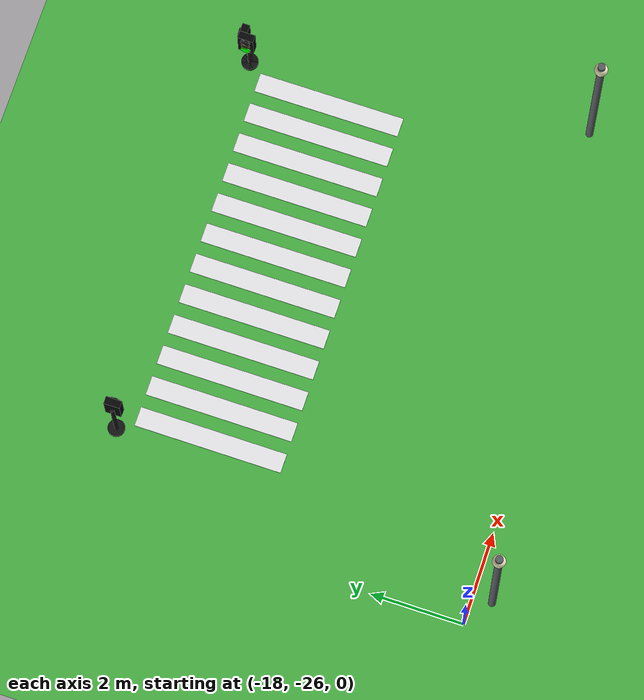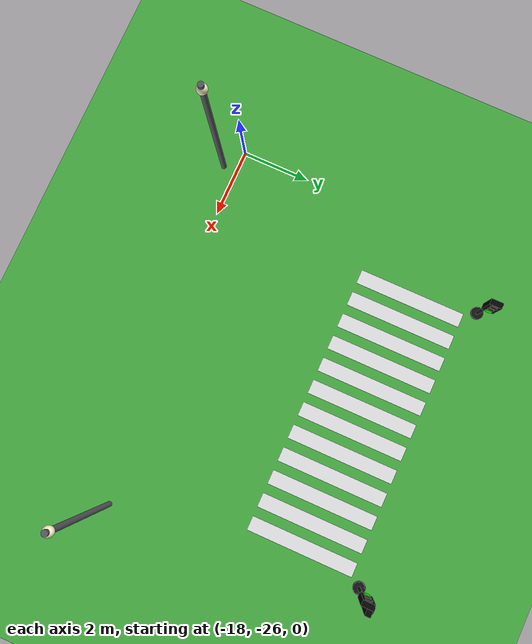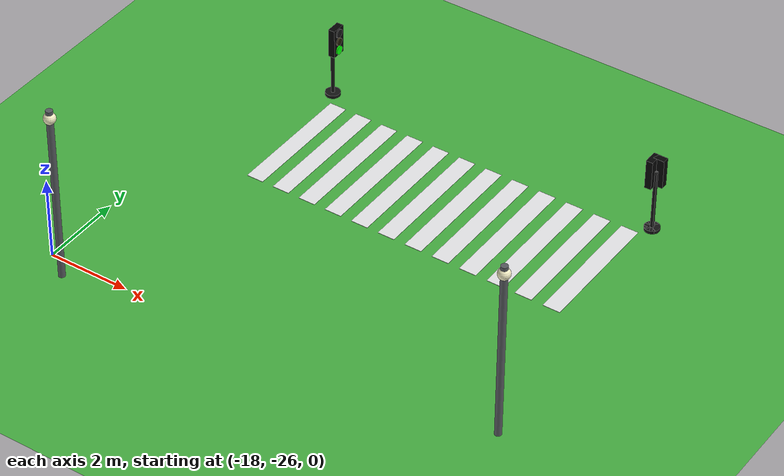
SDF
<sdf version="1.10">
 <world name="city_second">
  <model name="ground_plane">
   <static>true</static>
   <link name="link">
    <collision name="collision">
     <geometry><plane><normal>0 0 1</normal><size>300 300</size></plane></geometry>
    </collision>
    <visual name="visual">
     <geometry><plane><normal>0 0 1</normal><size>300 300</size></plane></geometry>
     <material>
      <ambient>0.280000001 0.689999998 0.25999999 1</ambient>
      <diffuse>0.280000001 0.689999998 0.25999999 1</diffuse>
      <specular>0.0299999993 0.0299999993 0.0299999993 1</specular>
     </material>
    </visual>
    <inertial>
     <mass>1</mass>
     <inertia><ixx>1</ixx><ixy>0</ixy><ixz>0</ixz><iyy>1</iyy><iyz>0</iyz><izz>1</izz></inertia>
    </inertial>
   </link>
  </model>
  <model name="crosswalk_h_1_1_south_7_3">
   <static>true</static>
   <pose>-12.1189 -19.828700000000001 0.017000000000000001 0 0 0</pose>
   <link name="stripe_1">
    <collision name="collision">
     <geometry><box><size>0.41999999999999998 3.2000000000000002 0.01</size></box></geometry>
    </collision>
    <visual name="visual">
     <geometry><box><size>0.41999999999999998 3.2000000000000002 0.01</size></box></geometry>
     <material>
      <ambient>0.920000017 0.920000017 0.930000007 1</ambient>
      <diffuse>0.920000017 0.920000017 0.930000007 1</diffuse>
      <specular>0.0299999993 0.0299999993 0.0299999993 1</specular>
     </material>
    </visual>
    <pose>-3.8500000000000001 0 0 0 0 0</pose>
    <inertial>
     <mass>1</mass>
     <inertia><ixx>1</ixx><ixy>0</ixy><ixz>0</ixz><iyy>1</iyy><iyz>0</iyz><izz>1</izz></inertia>
    </inertial>
   </link>
   <link name="stripe_2">
    <collision name="collision">
     <geometry><box><size>0.41999999999999998 3.2000000000000002 0.01</size></box></geometry>
    </collision>
    <visual name="visual">
     <geometry><box><size>0.41999999999999998 3.2000000000000002 0.01</size></box></geometry>
     <material>
      <ambient>0.920000017 0.920000017 0.930000007 1</ambient>
      <diffuse>0.920000017 0.920000017 0.930000007 1</diffuse>
      <specular>0.0299999993 0.0299999993 0.0299999993 1</specular>
     </material>
    </visual>
    <pose>-3.1499999999999999 0 0 0 0 0</pose>
    <inertial>
     <mass>1</mass>
     <inertia><ixx>1</ixx><ixy>0</ixy><ixz>0</ixz><iyy>1</iyy><iyz>0</iyz><izz>1</izz></inertia>
    </inertial>
   </link>
   <link name="stripe_3">
    <collision name="collision">
     <geometry><box><size>0.41999999999999998 3.2000000000000002 0.01</size></box></geometry>
    </collision>
    <visual name="visual">
     <geometry><box><size>0.41999999999999998 3.2000000000000002 0.01</size></box></geometry>
     <material>
      <ambient>0.920000017 0.920000017 0.930000007 1</ambient>
      <diffuse>0.920000017 0.920000017 0.930000007 1</diffuse>
      <specular>0.0299999993 0.0299999993 0.0299999993 1</specular>
     </material>
    </visual>
    <pose>-2.4500000000000002 0 0 0 0 0</pose>
    <inertial>
     <mass>1</mass>
     <inertia><ixx>1</ixx><ixy>0</ixy><ixz>0</ixz><iyy>1</iyy><iyz>0</iyz><izz>1</izz></inertia>
    </inertial>
   </link>
   <link name="stripe_4">
    <collision name="collision">
     <geometry><box><size>0.41999999999999998 3.2000000000000002 0.01</size></box></geometry>
    </collision>
    <visual name="visual">
     <geometry><box><size>0.41999999999999998 3.2000000000000002 0.01</size></box></geometry>
     <material>
      <ambient>0.920000017 0.920000017 0.930000007 1</ambient>
      <diffuse>0.920000017 0.920000017 0.930000007 1</diffuse>
      <specular>0.0299999993 0.0299999993 0.0299999993 1</specular>
     </material>
    </visual>
    <pose>-1.75 0 0 0 0 0</pose>
    <inertial>
     <mass>1</mass>
     <inertia><ixx>1</ixx><ixy>0</ixy><ixz>0</ixz><iyy>1</iyy><iyz>0</iyz><izz>1</izz></inertia>
    </inertial>
   </link>
   <link name="stripe_5">
    <collision name="collision">
     <geometry><box><size>0.41999999999999998 3.2000000000000002 0.01</size></box></geometry>
    </collision>
    <visual name="visual">
     <geometry><box><size>0.41999999999999998 3.2000000000000002 0.01</size></box></geometry>
     <material>
      <ambient>0.920000017 0.920000017 0.930000007 1</ambient>
      <diffuse>0.920000017 0.920000017 0.930000007 1</diffuse>
      <specular>0.0299999993 0.0299999993 0.0299999993 1</specular>
     </material>
    </visual>
    <pose>-1.05 0 0 0 0 0</pose>
    <inertial>
     <mass>1</mass>
     <inertia><ixx>1</ixx><ixy>0</ixy><ixz>0</ixz><iyy>1</iyy><iyz>0</iyz><izz>1</izz></inertia>
    </inertial>
   </link>
   <link name="stripe_6">
    <collision name="collision">
     <geometry><box><size>0.41999999999999998 3.2000000000000002 0.01</size></box></geometry>
    </collision>
    <visual name="visual">
     <geometry><box><size>0.41999999999999998 3.2000000000000002 0.01</size></box></geometry>
     <material>
      <ambient>0.920000017 0.920000017 0.930000007 1</ambient>
      <diffuse>0.920000017 0.920000017 0.930000007 1</diffuse>
      <specular>0.0299999993 0.0299999993 0.0299999993 1</specular>
     </material>
    </visual>
    <pose>-0.34999999999999998 0 0 0 0 0</pose>
    <inertial>
     <mass>1</mass>
     <inertia><ixx>1</ixx><ixy>0</ixy><ixz>0</ixz><iyy>1</iyy><iyz>0</iyz><izz>1</izz></inertia>
    </inertial>
   </link>
   <link name="stripe_7">
    <collision name="collision">
     <geometry><box><size>0.41999999999999998 3.2000000000000002 0.01</size></box></geometry>
    </collision>
    <visual name="visual">
     <geometry><box><size>0.41999999999999998 3.2000000000000002 0.01</size></box></geometry>
     <material>
      <ambient>0.920000017 0.920000017 0.930000007 1</ambient>
      <diffuse>0.920000017 0.920000017 0.930000007 1</diffuse>
      <specular>0.0299999993 0.0299999993 0.0299999993 1</specular>
     </material>
    </visual>
    <pose>0.34999999999999998 0 0 0 0 0</pose>
    <inertial>
     <mass>1</mass>
     <inertia><ixx>1</ixx><ixy>0</ixy><ixz>0</ixz><iyy>1</iyy><iyz>0</iyz><izz>1</izz></inertia>
    </inertial>
   </link>
   <link name="stripe_8">
    <collision name="collision">
     <geometry><box><size>0.41999999999999998 3.2000000000000002 0.01</size></box></geometry>
    </collision>
    <visual name="visual">
     <geometry><box><size>0.41999999999999998 3.2000000000000002 0.01</size></box></geometry>
     <material>
      <ambient>0.920000017 0.920000017 0.930000007 1</ambient>
      <diffuse>0.920000017 0.920000017 0.930000007 1</diffuse>
      <specular>0.0299999993 0.0299999993 0.0299999993 1</specular>
     </material>
    </visual>
    <pose>1.05 0 0 0 0 0</pose>
    <inertial>
     <mass>1</mass>
     <inertia><ixx>1</ixx><ixy>0</ixy><ixz>0</ixz><iyy>1</iyy><iyz>0</iyz><izz>1</izz></inertia>
    </inertial>
   </link>
   <link name="stripe_9">
    <collision name="collision">
     <geometry><box><size>0.41999999999999998 3.2000000000000002 0.01</size></box></geometry>
    </collision>
    <visual name="visual">
     <geometry><box><size>0.41999999999999998 3.2000000000000002 0.01</size></box></geometry>
     <material>
      <ambient>0.920000017 0.920000017 0.930000007 1</ambient>
      <diffuse>0.920000017 0.920000017 0.930000007 1</diffuse>
      <specular>0.0299999993 0.0299999993 0.0299999993 1</specular>
     </material>
    </visual>
    <pose>1.75 0 0 0 0 0</pose>
    <inertial>
     <mass>1</mass>
     <inertia><ixx>1</ixx><ixy>0</ixy><ixz>0</ixz><iyy>1</iyy><iyz>0</iyz><izz>1</izz></inertia>
    </inertial>
   </link>
   <link name="stripe_10">
    <collision name="collision">
     <geometry><box><size>0.41999999999999998 3.2000000000000002 0.01</size></box></geometry>
    </collision>
    <visual name="visual">
     <geometry><box><size>0.41999999999999998 3.2000000000000002 0.01</size></box></geometry>
     <material>
      <ambient>0.920000017 0.920000017 0.930000007 1</ambient>
      <diffuse>0.920000017 0.920000017 0.930000007 1</diffuse>
      <specular>0.0299999993 0.0299999993 0.0299999993 1</specular>
     </material>
    </visual>
    <pose>2.4500000000000002 0 0 0 0 0</pose>
    <inertial>
     <mass>1</mass>
     <inertia><ixx>1</ixx><ixy>0</ixy><ixz>0</ixz><iyy>1</iyy><iyz>0</iyz><izz>1</izz></inertia>
    </inertial>
   </link>
   <link name="stripe_11">
    <collision name="collision">
     <geometry><box><size>0.41999999999999998 3.2000000000000002 0.01</size></box></geometry>
    </collision>
    <visual name="visual">
     <geometry><box><size>0.41999999999999998 3.2000000000000002 0.01</size></box></geometry>
     <material>
      <ambient>0.920000017 0.920000017 0.930000007 1</ambient>
      <diffuse>0.920000017 0.920000017 0.930000007 1</diffuse>
      <specular>0.0299999993 0.0299999993 0.0299999993 1</specular>
     </material>
    </visual>
    <pose>3.1499999999999999 0 0 0 0 0</pose>
    <inertial>
     <mass>1</mass>
     <inertia><ixx>1</ixx><ixy>0</ixy><ixz>0</ixz><iyy>1</iyy><iyz>0</iyz><izz>1</izz></inertia>
    </inertial>
   </link>
   <link name="stripe_12">
    <collision name="collision">
     <geometry><box><size>0.41999999999999998 3.2000000000000002 0.01</size></box></geometry>
    </collision>
    <visual name="visual">
     <geometry><box><size>0.41999999999999998 3.2000000000000002 0.01</size></box></geometry>
     <material>
      <ambient>0.920000017 0.920000017 0.930000007 1</ambient>
      <diffuse>0.920000017 0.920000017 0.930000007 1</diffuse>
      <specular>0.0299999993 0.0299999993 0.0299999993 1</specular>
     </material>
    </visual>
    <pose>3.8500000000000001 0 0 0 0 0</pose>
    <inertial>
     <mass>1</mass>
     <inertia><ixx>1</ixx><ixy>0</ixy><ixz>0</ixz><iyy>1</iyy><iyz>0</iyz><izz>1</izz></inertia>
    </inertial>
   </link>
  </model>
  <model name="lamp_1_2_3">
   <static>true</static>
   <pose>-17.3917 -26.418299999999999 2.2000000000000002 0 0 0</pose>
   <link name="link">
    <collision name="collision">
     <geometry>
      <cylinder><radius>0.080000000000000002</radius><length>4.4000000000000004</length></cylinder>
     </geometry>
    </collision>
    <visual name="pole">
     <geometry>
      <cylinder><radius>0.080000000000000002</radius><length>4.4000000000000004</length></cylinder>
     </geometry>
     <material>
      <ambient>0.349999994 0.360000014 0.379999995 1</ambient>
      <diffuse>0.349999994 0.360000014 0.379999995 1</diffuse>
      <specular>0.0299999993 0.0299999993 0.0299999993 1</specular>
     </material>
    </visual>
    <visual name="lamp_head">
     <pose>0 0 2 0 0 0</pose>
     <geometry><sphere><radius>0.14000000000000001</radius></sphere></geometry>
     <material>
      <ambient>0.959999979 0.939999998 0.779999971 1</ambient>
      <diffuse>0.959999979 0.939999998 0.779999971 1</diffuse>
      <specular>0.0299999993 0.0299999993 0.0299999993 1</specular>
     </material>
    </visual>
    <inertial>
     <mass>1</mass>
     <inertia><ixx>1</ixx><ixy>0</ixy><ixz>0</ixz><iyy>1</iyy><iyz>0</iyz><izz>1</izz></inertia>
    </inertial>
   </link>
  </model>
  <model name="lamp_1_2_4">
   <static>true</static>
   <pose>-7.1247800000000003 -25.261600000000001 2.2000000000000002 0 0 0</pose>
   <link name="link">
    <collision name="collision">
     <geometry>
      <cylinder><radius>0.080000000000000002</radius><length>4.4000000000000004</length></cylinder>
     </geometry>
    </collision>
    <visual name="pole">
     <geometry>
      <cylinder><radius>0.080000000000000002</radius><length>4.4000000000000004</length></cylinder>
     </geometry>
     <material>
      <ambient>0.349999994 0.360000014 0.379999995 1</ambient>
      <diffuse>0.349999994 0.360000014 0.379999995 1</diffuse>
      <specular>0.0299999993 0.0299999993 0.0299999993 1</specular>
     </material>
    </visual>
    <visual name="lamp_head">
     <pose>0 0 2 0 0 0</pose>
     <geometry><sphere><radius>0.14000000000000001</radius></sphere></geometry>
     <material>
      <ambient>0.959999979 0.939999998 0.779999971 1</ambient>
      <diffuse>0.959999979 0.939999998 0.779999971 1</diffuse>
      <specular>0.0299999993 0.0299999993 0.0299999993 1</specular>
     </material>
    </visual>
    <inertial>
     <mass>1</mass>
     <inertia><ixx>1</ixx><ixy>0</ixy><ixz>0</ixz><iyy>1</iyy><iyz>0</iyz><izz>1</izz></inertia>
    </inertial>
   </link>
  </model>
  <model name="simple_traffic_light_green_north_1_1">
   <static>true</static>
   <pose>-7.892690759823056 -17.934411539396873 0 0 0 0</pose>
   <link name="base">
    <pose>0 0 0.040000000000000001 0 0 0</pose>
    <collision name="collision">
     <geometry>
      <cylinder><radius>0.17999999999999999</radius><length>0.080000000000000002</length></cylinder>
     </geometry>
    </collision>
    <visual name="visual">
     <geometry>
      <cylinder><radius>0.17999999999999999</radius><length>0.080000000000000002</length></cylinder>
     </geometry>
     <material>
      <ambient>0.0799999982 0.0799999982 0.0799999982 1</ambient>
      <diffuse>0.0799999982 0.0799999982 0.0799999982 1</diffuse>
      <specular>0.150000006 0.150000006 0.150000006 1</specular>
      <emissive>0 0 0 1</emissive>
     </material>
    </visual>
   </link>
   <link name="pole">
    <pose>0 0 0.80000000000000004 0 0 0</pose>
    <collision name="collision">
     <geometry>
      <cylinder><radius>0.044999999999999998</radius><length>1.6000000000000001</length></cylinder>
     </geometry>
    </collision>
    <visual name="visual">
     <geometry>
      <cylinder><radius>0.044999999999999998</radius><length>1.6000000000000001</length></cylinder>
     </geometry>
     <material>
      <ambient>0.0799999982 0.0799999982 0.0799999982 1</ambient>
      <diffuse>0.0799999982 0.0799999982 0.0799999982 1</diffuse>
      <specular>0.150000006 0.150000006 0.150000006 1</specular>
      <emissive>0 0 0 1</emissive>
     </material>
    </visual>
   </link>
   <link name="signal_box">
    <pose>0 0.089999999999999997 1.55 0 0 0</pose>
    <collision name="collision">
     <geometry><box><size>0.34000000000000002 0.16 0.71999999999999997</size></box></geometry>
    </collision>
    <visual name="visual">
     <geometry><box><size>0.34000000000000002 0.16 0.71999999999999997</size></box></geometry>
     <material>
      <ambient>0.0199999996 0.0199999996 0.0199999996 1</ambient>
      <diffuse>0.0199999996 0.0199999996 0.0199999996 1</diffuse>
      <specular>0.150000006 0.150000006 0.150000006 1</specular>
      <emissive>0 0 0 1</emissive>
     </material>
    </visual>
   </link>
   <link name="red_lens">
    <pose>0 0.18099999999999999 1.78 1.5707963268 0 0</pose>
    <collision name="collision">
     <geometry><cylinder><radius>0.105</radius><length>0.035000000000000003</length></cylinder></geometry>
    </collision>
    <visual name="visual">
     <geometry><cylinder><radius>0.105</radius><length>0.035000000000000003</length></cylinder></geometry>
     <material>
      <ambient>0.0799999982 0.0799999982 0.0799999982 1</ambient>
      <diffuse>0.0799999982 0.0799999982 0.0799999982 1</diffuse>
      <specular>0.150000006 0.150000006 0.150000006 1</specular>
      <emissive>0 0 0 1</emissive>
     </material>
    </visual>
   </link>
   <link name="yellow_lens">
    <pose>0 0.182 1.55 1.5707963268 0 0</pose>
    <collision name="collision">
     <geometry>
      <cylinder><radius>0.095000000000000001</radius><length>0.035000000000000003</length></cylinder>
     </geometry>
    </collision>
    <visual name="visual">
     <geometry>
      <cylinder><radius>0.095000000000000001</radius><length>0.035000000000000003</length></cylinder>
     </geometry>
     <material>
      <ambient>0.119999997 0.100000001 0.0199999996 1</ambient>
      <diffuse>0.119999997 0.100000001 0.0199999996 1</diffuse>
      <specular>0.150000006 0.150000006 0.150000006 1</specular>
      <emissive>0 0 0 1</emissive>
     </material>
    </visual>
   </link>
   <link name="green_lens">
    <pose>0 0.183 1.3200000000000001 1.5707963268 0 0</pose>
    <collision name="collision">
     <geometry><cylinder><radius>0.105</radius><length>0.035000000000000003</length></cylinder></geometry>
    </collision>
    <visual name="visual">
     <geometry><cylinder><radius>0.105</radius><length>0.035000000000000003</length></cylinder></geometry>
     <material>
      <ambient>0.0199999996 1 0.0199999996 1</ambient>
      <diffuse>0.0199999996 1 0.0199999996 1</diffuse>
      <specular>0.150000006 0.150000006 0.150000006 1</specular>
      <emissive>0.0199999996 1 0.0199999996 1</emissive>
     </material>
    </visual>
   </link>
   <light name="green_glow" type="point">
    <pose>0 0.28 1.32 0 0 0</pose>
    <diffuse>0.02 1 0.02 1</diffuse>
    <specular>0.02 1 0.02 1</specular>
    <attenuation>
     <range>3.0</range>
     <constant>0.8</constant>
     <linear>0.15</linear>
     <quadratic>0.02</quadratic>
    </attenuation>
    <cast_shadows>false</cast_shadows>
   </light>
  </model>
  <model name="simple_traffic_light_green_east_1_1">
   <static>true</static>
   <pose>-16.352831093892426 -17.895696302400466 -1.3877787807814457e-17 0 0 -1.5707999672671704</pose>
   <link name="base">
    <pose>0 0 0.040000000000000001 0 0 0</pose>
    <collision name="collision">
     <geometry>
      <cylinder><radius>0.17999999999999999</radius><length>0.080000000000000002</length></cylinder>
     </geometry>
    </collision>
    <visual name="visual">
     <geometry>
      <cylinder><radius>0.17999999999999999</radius><length>0.080000000000000002</length></cylinder>
     </geometry>
     <material>
      <ambient>0.0799999982 0.0799999982 0.0799999982 1</ambient>
      <diffuse>0.0799999982 0.0799999982 0.0799999982 1</diffuse>
      <specular>0.150000006 0.150000006 0.150000006 1</specular>
      <emissive>0 0 0 1</emissive>
     </material>
    </visual>
   </link>
   <link name="pole">
    <pose>0 0 0.80000000000000004 0 0 0</pose>
    <collision name="collision">
     <geometry>
      <cylinder><radius>0.044999999999999998</radius><length>1.6000000000000001</length></cylinder>
     </geometry>
    </collision>
    <visual name="visual">
     <geometry>
      <cylinder><radius>0.044999999999999998</radius><length>1.6000000000000001</length></cylinder>
     </geometry>
     <material>
      <ambient>0.0799999982 0.0799999982 0.0799999982 1</ambient>
      <diffuse>0.0799999982 0.0799999982 0.0799999982 1</diffuse>
      <specular>0.150000006 0.150000006 0.150000006 1</specular>
      <emissive>0 0 0 1</emissive>
     </material>
    </visual>
   </link>
   <link name="signal_box">
    <pose>0 0.089999999999999997 1.55 0 0 0</pose>
    <collision name="collision">
     <geometry><box><size>0.34000000000000002 0.16 0.71999999999999997</size></box></geometry>
    </collision>
    <visual name="visual">
     <geometry><box><size>0.34000000000000002 0.16 0.71999999999999997</size></box></geometry>
     <material>
      <ambient>0.0199999996 0.0199999996 0.0199999996 1</ambient>
      <diffuse>0.0199999996 0.0199999996 0.0199999996 1</diffuse>
      <specular>0.150000006 0.150000006 0.150000006 1</specular>
      <emissive>0 0 0 1</emissive>
     </material>
    </visual>
   </link>
   <link name="red_lens">
    <pose>0 0.18099999999999999 1.78 1.5707963268 0 0</pose>
    <collision name="collision">
     <geometry><cylinder><radius>0.105</radius><length>0.035000000000000003</length></cylinder></geometry>
    </collision>
    <visual name="visual">
     <geometry><cylinder><radius>0.105</radius><length>0.035000000000000003</length></cylinder></geometry>
     <material>
      <ambient>0.0799999982 0.0799999982 0.0799999982 1</ambient>
      <diffuse>0.0799999982 0.0799999982 0.0799999982 1</diffuse>
      <specular>0.150000006 0.150000006 0.150000006 1</specular>
      <emissive>0 0 0 1</emissive>
     </material>
    </visual>
   </link>
   <link name="yellow_lens">
    <pose>0 0.182 1.55 1.5707963268 0 0</pose>
    <collision name="collision">
     <geometry>
      <cylinder><radius>0.095000000000000001</radius><length>0.035000000000000003</length></cylinder>
     </geometry>
    </collision>
    <visual name="visual">
     <geometry>
      <cylinder><radius>0.095000000000000001</radius><length>0.035000000000000003</length></cylinder>
     </geometry>
     <material>
      <ambient>0.119999997 0.100000001 0.0199999996 1</ambient>
      <diffuse>0.119999997 0.100000001 0.0199999996 1</diffuse>
      <specular>0.150000006 0.150000006 0.150000006 1</specular>
      <emissive>0 0 0 1</emissive>
     </material>
    </visual>
   </link>
   <link name="green_lens">
    <pose>0 0.183 1.3200000000000001 1.5707963268 0 0</pose>
    <collision name="collision">
     <geometry><cylinder><radius>0.105</radius><length>0.035000000000000003</length></cylinder></geometry>
    </collision>
    <visual name="visual">
     <geometry><cylinder><radius>0.105</radius><length>0.035000000000000003</length></cylinder></geometry>
     <material>
      <ambient>0.0199999996 1 0.0199999996 1</ambient>
      <diffuse>0.0199999996 1 0.0199999996 1</diffuse>
      <specular>0.150000006 0.150000006 0.150000006 1</specular>
      <emissive>0.0199999996 1 0.0199999996 1</emissive>
     </material>
    </visual>
   </link>
   <light name="green_glow" type="point">
    <pose>0 0.28 1.32 0 0 0</pose>
    <diffuse>0.02 1 0.02 1</diffuse>
    <specular>0.02 1 0.02 1</specular>
    <attenuation>
     <range>3.0</range>
     <constant>0.8</constant>
     <linear>0.15</linear>
     <quadratic>0.02</quadratic>
    </attenuation>
    <cast_shadows>false</cast_shadows>
   </light>
  </model>
  <model name="simple_traffic_light_green_west_1_1">
   <static>true</static>
   <pose>-7.8903706909818361 -17.93204356425986 -1.3877787807814457e-17 0 0 1.5707999672671704</pose>
   <link name="base">
    <pose>0 0 0.040000000000000001 0 0 0</pose>
    <collision name="collision">
     <geometry>
      <cylinder><radius>0.17999999999999999</radius><length>0.080000000000000002</length></cylinder>
     </geometry>
    </collision>
    <visual name="visual">
     <geometry>
      <cylinder><radius>0.17999999999999999</radius><length>0.080000000000000002</length></cylinder>
     </geometry>
     <material>
      <ambient>0.0799999982 0.0799999982 0.0799999982 1</ambient>
      <diffuse>0.0799999982 0.0799999982 0.0799999982 1</diffuse>
      <specular>0.150000006 0.150000006 0.150000006 1</specular>
      <emissive>0 0 0 1</emissive>
     </material>
    </visual>
   </link>
   <link name="pole">
    <pose>0 0 0.80000000000000004 0 0 0</pose>
    <collision name="collision">
     <geometry>
      <cylinder><radius>0.044999999999999998</radius><length>1.6000000000000001</length></cylinder>
     </geometry>
    </collision>
    <visual name="visual">
     <geometry>
      <cylinder><radius>0.044999999999999998</radius><length>1.6000000000000001</length></cylinder>
     </geometry>
     <material>
      <ambient>0.0799999982 0.0799999982 0.0799999982 1</ambient>
      <diffuse>0.0799999982 0.0799999982 0.0799999982 1</diffuse>
      <specular>0.150000006 0.150000006 0.150000006 1</specular>
      <emissive>0 0 0 1</emissive>
     </material>
    </visual>
   </link>
   <link name="signal_box">
    <pose>0 0.089999999999999997 1.55 0 0 0</pose>
    <collision name="collision">
     <geometry><box><size>0.34000000000000002 0.16 0.71999999999999997</size></box></geometry>
    </collision>
    <visual name="visual">
     <geometry><box><size>0.34000000000000002 0.16 0.71999999999999997</size></box></geometry>
     <material>
      <ambient>0.0199999996 0.0199999996 0.0199999996 1</ambient>
      <diffuse>0.0199999996 0.0199999996 0.0199999996 1</diffuse>
      <specular>0.150000006 0.150000006 0.150000006 1</specular>
      <emissive>0 0 0 1</emissive>
     </material>
    </visual>
   </link>
   <link name="red_lens">
    <pose>0 0.18099999999999999 1.78 1.5707963268 0 0</pose>
    <collision name="collision">
     <geometry><cylinder><radius>0.105</radius><length>0.035000000000000003</length></cylinder></geometry>
    </collision>
    <visual name="visual">
     <geometry><cylinder><radius>0.105</radius><length>0.035000000000000003</length></cylinder></geometry>
     <material>
      <ambient>0.0799999982 0.0799999982 0.0799999982 1</ambient>
      <diffuse>0.0799999982 0.0799999982 0.0799999982 1</diffuse>
      <specular>0.150000006 0.150000006 0.150000006 1</specular>
      <emissive>0 0 0 1</emissive>
     </material>
    </visual>
   </link>
   <link name="yellow_lens">
    <pose>0 0.182 1.55 1.5707963268 0 0</pose>
    <collision name="collision">
     <geometry>
      <cylinder><radius>0.095000000000000001</radius><length>0.035000000000000003</length></cylinder>
     </geometry>
    </collision>
    <visual name="visual">
     <geometry>
      <cylinder><radius>0.095000000000000001</radius><length>0.035000000000000003</length></cylinder>
     </geometry>
     <material>
      <ambient>0.119999997 0.100000001 0.0199999996 1</ambient>
      <diffuse>0.119999997 0.100000001 0.0199999996 1</diffuse>
      <specular>0.150000006 0.150000006 0.150000006 1</specular>
      <emissive>0 0 0 1</emissive>
     </material>
    </visual>
   </link>
   <link name="green_lens">
    <pose>0 0.183 1.3200000000000001 1.5707963268 0 0</pose>
    <collision name="collision">
     <geometry><cylinder><radius>0.105</radius><length>0.035000000000000003</length></cylinder></geometry>
    </collision>
    <visual name="visual">
     <geometry><cylinder><radius>0.105</radius><length>0.035000000000000003</length></cylinder></geometry>
     <material>
      <ambient>0.0199999996 1 0.0199999996 1</ambient>
      <diffuse>0.0199999996 1 0.0199999996 1</diffuse>
      <specular>0.150000006 0.150000006 0.150000006 1</specular>
      <emissive>0.0199999996 1 0.0199999996 1</emissive>
     </material>
    </visual>
   </link>
   <light name="green_glow" type="point">
    <pose>0 0.28 1.32 0 0 0</pose>
    <diffuse>0.02 1 0.02 1</diffuse>
    <specular>0.02 1 0.02 1</specular>
    <attenuation>
     <range>3.0</range>
     <constant>0.8</constant>
     <linear>0.15</linear>
     <quadratic>0.02</quadratic>
    </attenuation>
    <cast_shadows>false</cast_shadows>
   </light>
  </model>
 </world>
</sdf>
